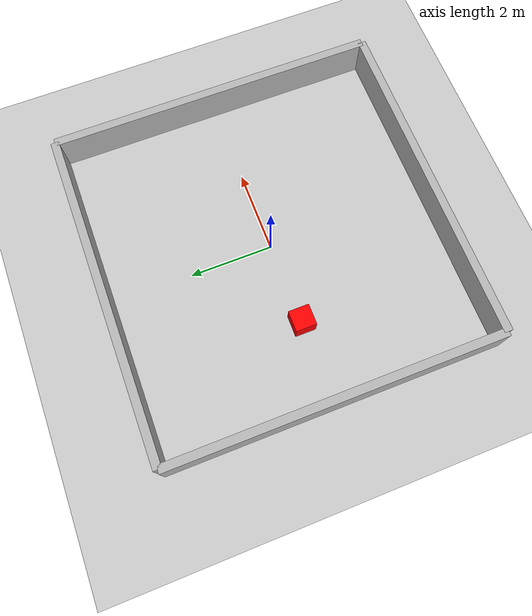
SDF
<?xml version="1.0" ?>
<sdf version="1.6">
  <world name="armazem_encomenda_atras">
    <!-- Luz e chão iguais -->
    <include>
      <uri>model://sun</uri>
    </include>
    <include>
      <uri>model://ground_plane</uri>
    </include>

    <!-- Paredes -->
    <model name='walls_armazem'>
      <static>true</static>
      <pose>0 0 0 0 0 0</pose>
      <link name='Wall_Norte'> <pose>0 4.0 0.5 0 0 0</pose> <visual name='visual'> <geometry> <box> <size>8 0.2 1</size> </box> </geometry> </visual> <collision name='collision'> <geometry> <box> <size>8 0.2 1</size> </box> </geometry> </collision> </link>
      <link name='Wall_Sul'> <pose>0 -4.0 0.5 0 0 0</pose> <visual name='visual'> <geometry> <box> <size>8 0.2 1</size> </box> </geometry> </visual> <collision name='collision'> <geometry> <box> <size>8 0.2 1</size> </box> </geometry> </collision> </link>
      <link name='Wall_Leste'> <pose>4.0 0 0.5 0 0 1.57</pose> <visual name='visual'> <geometry> <box> <size>8 0.2 1</size> </box> </geometry> </visual> <collision name='collision'> <geometry> <box> <size>8 0.2 1</size> </box> </geometry> </collision> </link>
      <link name='Wall_Oeste'> <pose>-4.0 0 0.5 0 0 1.57</pose> <visual name='visual'> <geometry> <box> <size>8 0.2 1</size> </box> </geometry> </visual> <collision name='collision'> <geometry> <box> <size>8 0.2 1</size> </box> </geometry> </collision> </link>
    </model>

    <!-- Encomenda atrás do robô -->
    <model name="encomenda">
      <static>true</static>
      <pose>-2.0 0 0.25 0 0 0</pose>
      <link name="link">
        <visual name="visual">
          <geometry><box><size>0.5 0.5 0.5</size></box></geometry>
          <material><ambient>1 0 0 1</ambient><diffuse>1 0 0 1</diffuse></material>
        </visual>
        <collision name="collision"> <geometry><box><size>0.5 0.5 0.5</size></box></geometry> </collision>
      </link>
    </model>
  </world>
</sdf>
